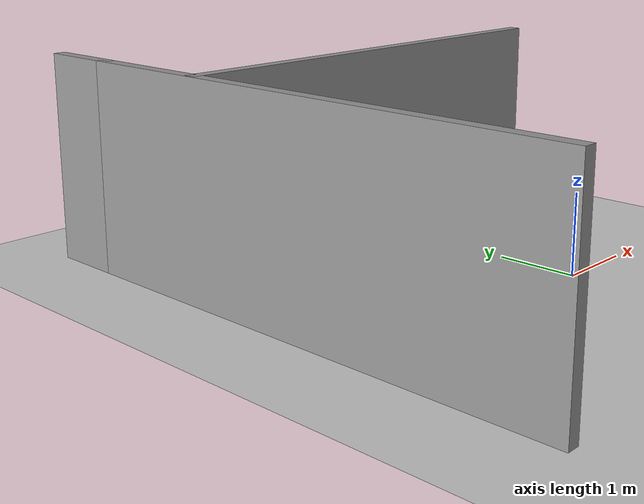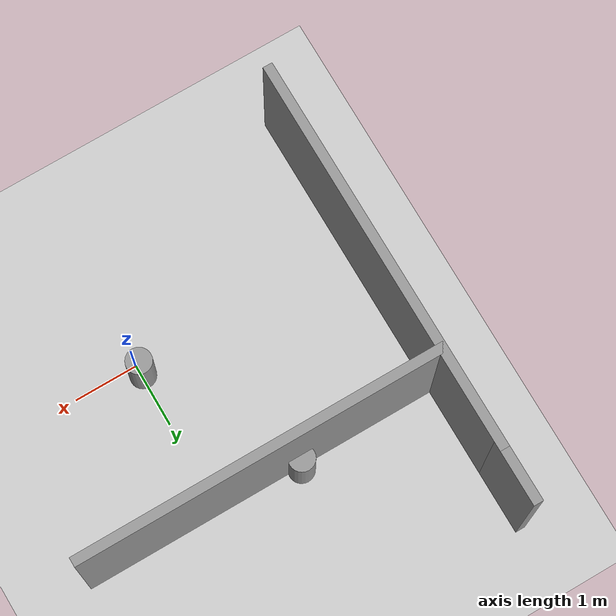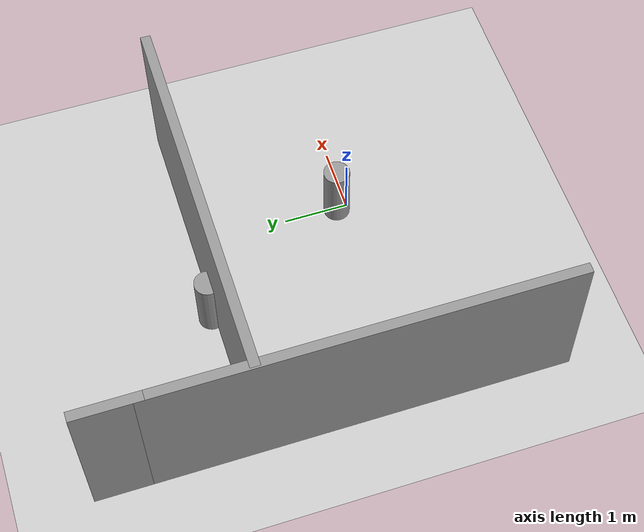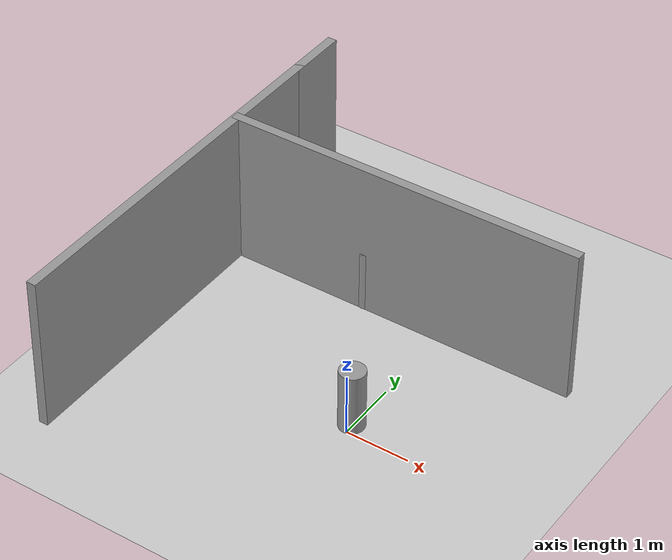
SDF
<sdf version="1.7">
 <world name="default">
  <model name="ground_plane">
   <static>1</static>
   <link name="link">
    <collision name="collision">
     <geometry><plane><normal>0 0 1</normal><size>100 100</size></plane></geometry>
     <surface>
      <contact><collide_bitmask>65535</collide_bitmask></contact>
      <friction><ode><mu>100</mu><mu2>50</mu2></ode></friction>
     </surface>
    </collision>
    <visual name="visual">
     <cast_shadows>0</cast_shadows>
     <geometry><plane><normal>0 0 1</normal><size>100 100</size></plane></geometry>
     <material>
      <script><uri>file://media/materials/scripts/gazebo.material</uri><name>Gazebo/Grey</name></script>
     </material>
    </visual>
   </link>
  </model>
  <model name="map10x10">
   <pose>0.061304 -0.054192 0 0 -0 0</pose>
   <link name="Wall_32">
    <collision name="Wall_32_Collision">
     <geometry><box><size>6.25 0.15 2.5</size></box></geometry>
     <pose>0 0 1.25 0 -0 0</pose>
    </collision>
    <visual name="Wall_32_Visual">
     <pose>0 0 1.25 0 -0 0</pose>
     <geometry><box><size>6.25 0.15 2.5</size></box></geometry>
     <material>
      <script><uri>file://media/materials/scripts/gazebo.material</uri><name>Gazebo/Grey</name></script>
      <ambient>1 1 1 1</ambient>
     </material>
     <meta><layer>0</layer></meta>
    </visual>
    <pose>-3.61806 0.947594 0 0 -0 1.5708</pose>
   </link>
   <link name="Wall_51">
    <collision name="Wall_51_Collision">
     <geometry><box><size>1 0.15 2.5</size></box></geometry>
     <pose>0 0 1.25 0 -0 0</pose>
    </collision>
    <visual name="Wall_51_Visual">
     <pose>0 0 1.25 0 -0 0</pose>
     <geometry><box><size>1 0.15 2.5</size></box></geometry>
     <material>
      <script><uri>file://media/materials/scripts/gazebo.material</uri><name>Gazebo/Grey</name></script>
      <ambient>1 1 1 1</ambient>
     </material>
     <meta><layer>0</layer></meta>
    </visual>
    <pose>-3.61806 4.42259 0 0 -0 1.5708</pose>
   </link>
   <link name="Wall_57">
    <collision name="Wall_57_Collision">
     <geometry><box><size>5.75 0.15 2.5</size></box></geometry>
     <pose>0 0 1.25 0 -0 0</pose>
    </collision>
    <visual name="Wall_57_Visual">
     <pose>0 0 1.25 0 -0 0</pose>
     <geometry><box><size>5.75 0.15 2.5</size></box></geometry>
     <material>
      <script><uri>file://media/materials/scripts/gazebo.material</uri><name>Gazebo/Grey</name></script>
      <ambient>1 1 1 1</ambient>
     </material>
     <meta><layer>0</layer></meta>
    </visual>
    <pose>-0.791463 2.47283 0 0 -0 0</pose>
   </link>
   <static>1</static>
  </model>
  <model name="obstacle1">
   <link name="link">
    <inertial>
     <mass>1</mass>
     <inertia><ixx>0.145833</ixx><ixy>0</ixy><ixz>0</ixz><iyy>0.145833</iyy><iyz>0</iyz><izz>0.125</izz></inertia>
    </inertial>
    <visual name="visual">
     <geometry><cylinder><radius>0.2</radius><length>1</length></cylinder></geometry>
     <material>
      <script><name>Gazebo/Grey</name><uri>file://media/materials/scripts/gazebo.material</uri></script>
      <shader type="pixel"><normal_map>__default__</normal_map></shader>
      <ambient>0.3 0.3 0.3 1</ambient>
      <diffuse>0.7 0.7 0.7 1</diffuse>
      <specular>0.01 0.01 0.01 1</specular>
      <emissive>0 0 0 1</emissive>
     </material>
    </visual>
    <collision name="collision">
     <geometry><cylinder><radius>0.2</radius><length>1</length></cylinder></geometry>
     <surface>
      <friction>
       <ode><mu>1</mu><mu2>1</mu2><fdir1>0 0 0</fdir1><slip1>0</slip1><slip2>0</slip2></ode>
       <torsional>
        <coefficient>1</coefficient>
        <patch_radius>0</patch_radius>
        <surface_radius>0</surface_radius>
        <use_patch_radius>1</use_patch_radius>
        <ode><slip>0</slip></ode>
       </torsional>
      </friction>
      <bounce><restitution_coefficient>0</restitution_coefficient><threshold>1e+06</threshold></bounce>
      <contact>
       <collide_without_contact>0</collide_without_contact>
       <collide_without_contact_bitmask>1</collide_without_contact_bitmask>
       <collide_bitmask>1</collide_bitmask>
       <ode>
        <soft_cfm>0</soft_cfm>
        <soft_erp>0.2</soft_erp>
        <kp>1e+13</kp>
        <kd>1</kd>
        <max_vel>0.01</max_vel>
        <min_depth>0</min_depth>
       </ode>
       <bullet>
        <split_impulse>1</split_impulse>
        <split_impulse_penetration_threshold>-0.01</split_impulse_penetration_threshold>
        <soft_cfm>0</soft_cfm>
        <soft_erp>0.2</soft_erp>
        <kp>1e+13</kp>
        <kd>1</kd>
       </bullet>
      </contact>
     </surface>
    </collision>
   </link>
   <static>1</static>
   <pose>-0.027371 0.170012 0.5 0 -0 0</pose>
  </model>
  <model name="obstacle1_clone_clone_1">
   <link name="link">
    <inertial>
     <mass>1</mass>
     <inertia><ixx>0.145833</ixx><ixy>0</ixy><ixz>0</ixz><iyy>0.145833</iyy><iyz>0</iyz><izz>0.125</izz></inertia>
    </inertial>
    <visual name="visual">
     <geometry><cylinder><radius>0.2</radius><length>1</length></cylinder></geometry>
     <material>
      <script><name>Gazebo/Grey</name><uri>file://media/materials/scripts/gazebo.material</uri></script>
      <shader type="pixel"><normal_map>__default__</normal_map></shader>
      <ambient>0.3 0.3 0.3 1</ambient>
      <diffuse>0.7 0.7 0.7 1</diffuse>
      <specular>0.01 0.01 0.01 1</specular>
      <emissive>0 0 0 1</emissive>
     </material>
    </visual>
    <collision name="collision">
     <geometry><cylinder><radius>0.2</radius><length>1</length></cylinder></geometry>
     <surface>
      <friction>
       <ode><mu>1</mu><mu2>1</mu2><fdir1>0 0 0</fdir1><slip1>0</slip1><slip2>0</slip2></ode>
       <torsional>
        <coefficient>1</coefficient>
        <patch_radius>0</patch_radius>
        <surface_radius>0</surface_radius>
        <use_patch_radius>1</use_patch_radius>
        <ode><slip>0</slip></ode>
       </torsional>
      </friction>
      <bounce><restitution_coefficient>0</restitution_coefficient><threshold>1e+06</threshold></bounce>
      <contact>
       <collide_without_contact>0</collide_without_contact>
       <collide_without_contact_bitmask>1</collide_without_contact_bitmask>
       <collide_bitmask>1</collide_bitmask>
       <ode>
        <soft_cfm>0</soft_cfm>
        <soft_erp>0.2</soft_erp>
        <kp>1e+13</kp>
        <kd>1</kd>
        <max_vel>0.01</max_vel>
        <min_depth>0</min_depth>
       </ode>
       <bullet>
        <split_impulse>1</split_impulse>
        <split_impulse_penetration_threshold>-0.01</split_impulse_penetration_threshold>
        <soft_cfm>0</soft_cfm>
        <soft_erp>0.2</soft_erp>
        <kp>1e+13</kp>
        <kd>1</kd>
       </bullet>
      </contact>
     </surface>
    </collision>
   </link>
   <static>1</static>
   <pose>-1.30434 2.53539 0.5 0 -0 0</pose>
  </model>
 </world>
</sdf>
